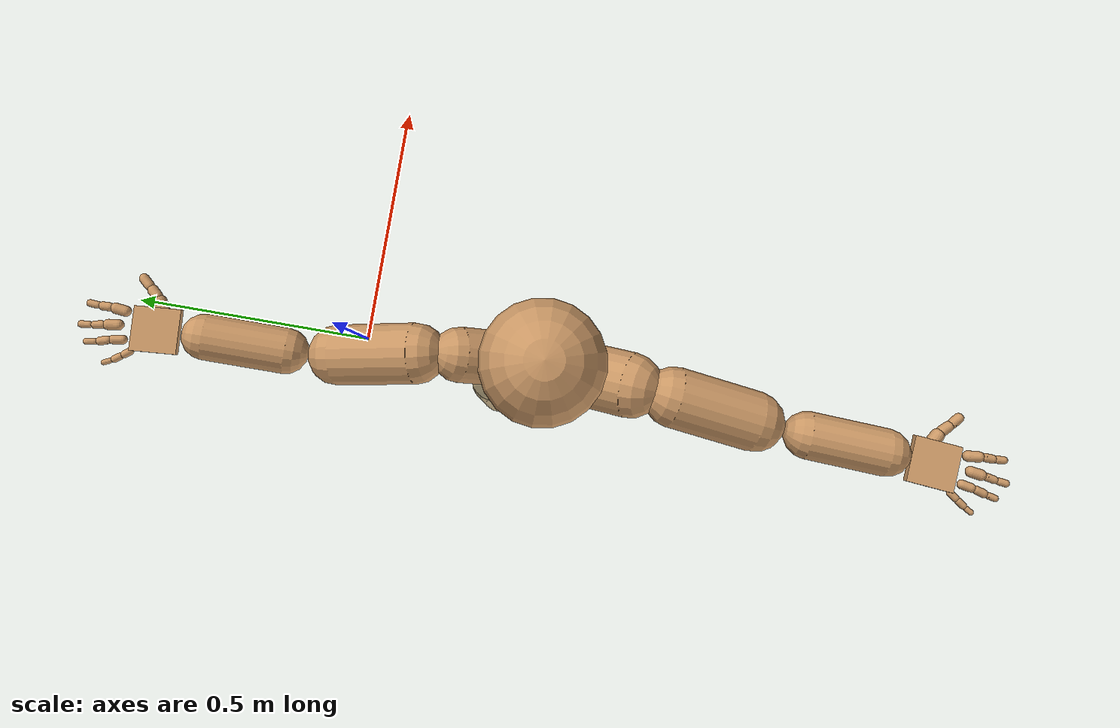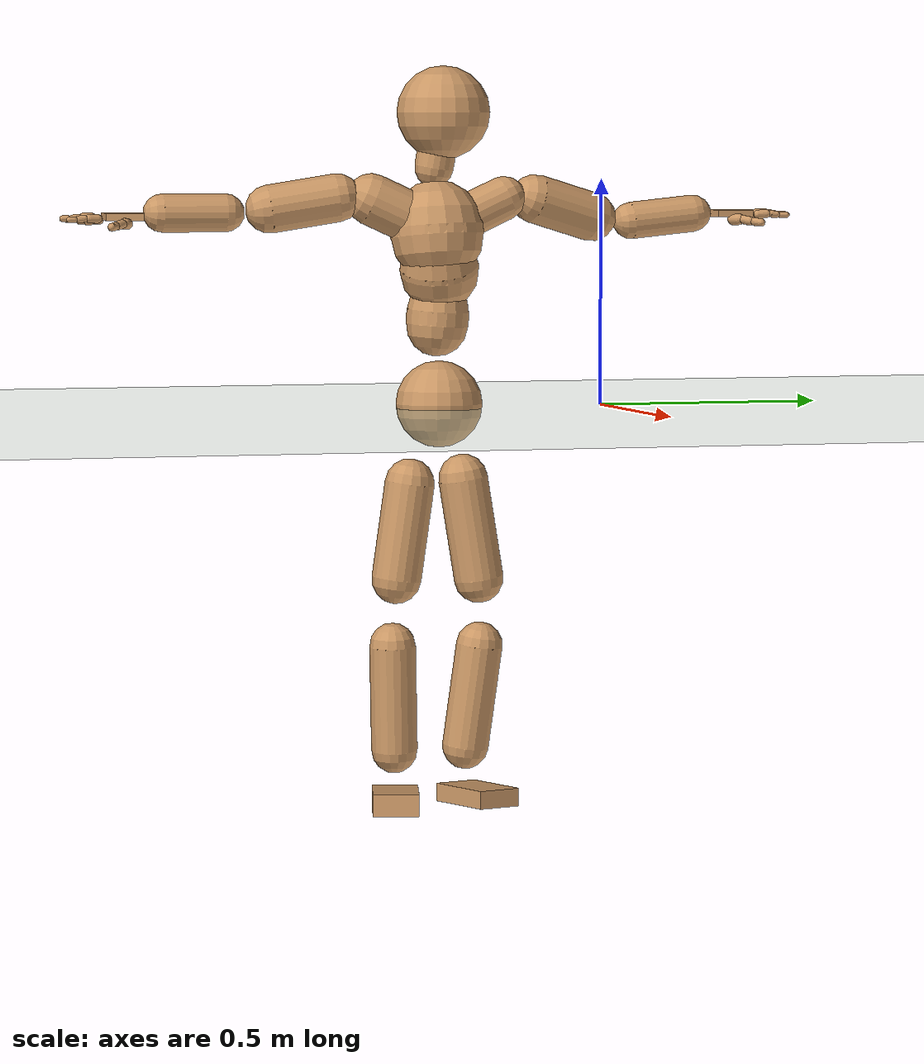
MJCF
<mujoco model="humanoid">
  <compiler coordinate="local" angle="radian"/>
  <default>
    <joint damping="0.0" armature="0.01" stiffness="0.0" limited="true"/>
    <geom conaffinity="1" condim="3" contype="7" margin="0.001" rgba="0.8 0.6 .4 1"/>
  </default>
  <asset>
    <texture type="skybox" builtin="gradient" rgb1=".4 .5 .6" rgb2="0 0 0" width="100" height="100"/>
    <texture builtin="flat" height="1278" mark="cross" markrgb="1 1 1" name="texgeom" random="0.01" rgb1="0.8 0.6 0.4" rgb2="0.8 0.6 0.4" type="cube" width="127"/>
    <texture builtin="checker" height="100" name="texplane" rgb1="0 0 0" rgb2="0.8 0.8 0.8" type="2d" width="100"/>
    <material name="MatPlane" reflectance="0.5" shininess="1" specular="1" texrepeat="60 60" texture="texplane"/>
    <material name="geom" texture="texgeom" texuniform="true"/>
  </asset>
  <worldbody>
    <light cutoff="100" diffuse="1 1 1" dir="-0 0 -1.3" directional="true" exponent="1" pos="0 0 1.3" specular=".1 .1 .1"/>
    <geom conaffinity="1" condim="3" name="floor" pos="0 0 0" rgba="0.8 0.9 0.8 1" size="100 100 .2" type="plane" material="MatPlane"/>
    <body name="Pelvis" pos="0.0009 -0.3744 0.007">
      <freejoint name="Pelvis"/>
      <geom type="sphere" contype="1" conaffinity="1" density="500" size="0.0956" pos="0.0000 0.0000 0.0000" name="Pelvis"/>
      <body name="L_Hip" pos="-0.025 0.0502 -0.0942">
        <joint name="L_Hip_x" type="hinge" pos="0 0 0" axis="1 0 0" stiffness="800" damping="80" armature="0.02" range="-180.0000 180.0000"/>
        <joint name="L_Hip_y" type="hinge" pos="0 0 0" axis="0 1 0" stiffness="800" damping="80" armature="0.02" range="-180.0000 180.0000"/>
        <joint name="L_Hip_z" type="hinge" pos="0 0 0" axis="0 0 1" stiffness="800" damping="80" armature="0.02" range="-180.0000 180.0000"/>
        <geom type="capsule" contype="1" conaffinity="1" density="500" fromto="-0.0014 0.0124 -0.0741 -0.0057 0.0498 -0.2965" size="0.0549" name="L_Hip"/>
        <body name="L_Knee" pos="-0.0071 0.0622 -0.3706">
          <joint name="L_Knee_x" type="hinge" pos="0 0 0" axis="1 0 0" stiffness="800" damping="80" armature="0.02" range="-180.0000 180.0000"/>
          <joint name="L_Knee_y" type="hinge" pos="0 0 0" axis="0 1 0" stiffness="800" damping="80" armature="0.02" range="-180.0000 180.0000"/>
          <joint name="L_Knee_z" type="hinge" pos="0 0 0" axis="0 0 1" stiffness="800" damping="80" armature="0.02" range="-180.0000 180.0000"/>
          <geom type="capsule" contype="1" conaffinity="1" density="500" fromto="-0.0076 -0.0085 -0.0757 -0.0303 -0.0342 -0.3030" size="0.0515" name="L_Knee"/>
          <body name="L_Ankle" pos="-0.0379 -0.0427 -0.3787">
            <joint name="L_Ankle_x" type="hinge" pos="0 0 0" axis="1 0 0" stiffness="800" damping="80" armature="0.02" range="-180.0000 180.0000"/>
            <joint name="L_Ankle_y" type="hinge" pos="0 0 0" axis="0 1 0" stiffness="800" damping="80" armature="0.02" range="-180.0000 180.0000"/>
            <joint name="L_Ankle_z" type="hinge" pos="0 0 0" axis="0 0 1" stiffness="800" damping="80" armature="0.02" range="-180.0000 180.0000"/>
            <geom type="box" contype="1" conaffinity="1" density="500" pos="0.0632 0.0211 -0.0274" size="0.0863 0.0509 0.0199" quat="0.9871 0.0000 0.0000 0.1601" name="L_Ankle"/>
            <body name="L_Toe" pos="0.1264 0.0421 -0.0548">
              <joint name="L_Toe_x" type="hinge" pos="0 0 0" axis="1 0 0" stiffness="500" damping="50" armature="0.02" range="-180.0000 180.0000"/>
              <joint name="L_Toe_y" type="hinge" pos="0 0 0" axis="0 1 0" stiffness="500" damping="50" armature="0.02" range="-180.0000 180.0000"/>
              <joint name="L_Toe_z" type="hinge" pos="0 0 0" axis="0 0 1" stiffness="500" damping="50" armature="0.02" range="-180.0000 180.0000"/>
              <geom type="box" contype="1" conaffinity="1" density="500" pos="0.0000 0.0000 0.0283" size="0.001 0.0024 0.001" quat="0.9864 0.0000 0.0000 0.1647" name="L_Toe"/>
            </body>
          </body>
        </body>
      </body>
      <body name="R_Hip" pos="-0.0187 -0.0518 -0.1048">
        <joint name="R_Hip_x" type="hinge" pos="0 0 0" axis="1 0 0" stiffness="800" damping="80" armature="0.02" range="-180.0000 180.0000"/>
        <joint name="R_Hip_y" type="hinge" pos="0 0 0" axis="0 1 0" stiffness="800" damping="80" armature="0.02" range="-180.0000 180.0000"/>
        <joint name="R_Hip_z" type="hinge" pos="0 0 0" axis="0 0 1" stiffness="800" damping="80" armature="0.02" range="-180.0000 180.0000"/>
        <geom type="capsule" contype="1" conaffinity="1" density="500" fromto="-0.0028 -0.0095 -0.0708 -0.0114 -0.0378 -0.2834" size="0.0547" name="R_Hip"/>
        <body name="R_Knee" pos="-0.0142 -0.0473 -0.3542">
          <joint name="R_Knee_x" type="hinge" pos="0 0 0" axis="1 0 0" stiffness="800" damping="80" armature="0.02" range="-180.0000 180.0000"/>
          <joint name="R_Knee_y" type="hinge" pos="0 0 0" axis="0 1 0" stiffness="800" damping="80" armature="0.02" range="-180.0000 180.0000"/>
          <joint name="R_Knee_z" type="hinge" pos="0 0 0" axis="0 0 1" stiffness="800" damping="80" armature="0.02" range="-180.0000 180.0000"/>
          <geom type="capsule" contype="1" conaffinity="1" density="500" fromto="-0.0074 0.0033 -0.0782 -0.0295 0.0134 -0.3129" size="0.0511" name="R_Knee"/>
          <body name="R_Ankle" pos="-0.0369 0.0167 -0.3912">
            <joint name="R_Ankle_x" type="hinge" pos="0 0 0" axis="1 0 0" stiffness="800" damping="80" armature="0.02" range="-180.0000 180.0000"/>
            <joint name="R_Ankle_y" type="hinge" pos="0 0 0" axis="0 1 0" stiffness="800" damping="80" armature="0.02" range="-180.0000 180.0000"/>
            <joint name="R_Ankle_z" type="hinge" pos="0 0 0" axis="0 0 1" stiffness="800" damping="80" armature="0.02" range="-180.0000 180.0000"/>
            <geom type="box" contype="1" conaffinity="1" density="500" pos="0.0663 -0.0169 -0.0271" size="0.0863 0.0509 0.0241" quat="0.9923 0.0000 0.0000 -0.1242" name="R_Ankle"/>
            <body name="R_Toe" pos="0.1326 -0.0337 -0.0542">
              <joint name="R_Toe_x" type="hinge" pos="0 0 0" axis="1 0 0" stiffness="500" damping="50" armature="0.02" range="-180.0000 180.0000"/>
              <joint name="R_Toe_y" type="hinge" pos="0 0 0" axis="0 1 0" stiffness="500" damping="50" armature="0.02" range="-180.0000 180.0000"/>
              <joint name="R_Toe_z" type="hinge" pos="0 0 0" axis="0 0 1" stiffness="500" damping="50" armature="0.02" range="-180.0000 180.0000"/>
              <geom type="box" contype="1" conaffinity="1" density="500" pos="0.0000 0.0000 0.0239" size="0.001 0.0024 0.001" quat="0.9933 0.0000 0.0000 -0.1155" name="R_Toe"/>
            </body>
          </body>
        </body>
      </body>
      <body name="Torso" pos="-0.0312 -0.0008 0.1091">
        <joint name="Torso_x" type="hinge" pos="0 0 0" axis="1 0 0" stiffness="1000" damping="100" armature="0.02" range="-180.0000 180.0000"/>
        <joint name="Torso_y" type="hinge" pos="0 0 0" axis="0 1 0" stiffness="1000" damping="100" armature="0.02" range="-180.0000 180.0000"/>
        <joint name="Torso_z" type="hinge" pos="0 0 0" axis="0 0 1" stiffness="1000" damping="100" armature="0.02" range="-180.0000 180.0000"/>
        <geom type="capsule" contype="1" conaffinity="1" density="500" fromto="0.0043 0.0060 0.0954 0.0029 0.0040 0.0636" size="0.0689" name="Torso"/>
        <body name="Spine" pos="0.0071 0.01 0.159">
          <joint name="Spine_x" type="hinge" pos="0 0 0" axis="1 0 0" stiffness="1000" damping="100" armature="0.02" range="-180.0000 180.0000"/>
          <joint name="Spine_y" type="hinge" pos="0 0 0" axis="0 1 0" stiffness="1000" damping="100" armature="0.02" range="-180.0000 180.0000"/>
          <joint name="Spine_z" type="hinge" pos="0 0 0" axis="0 0 1" stiffness="1000" damping="100" armature="0.02" range="-180.0000 180.0000"/>
          <geom type="capsule" contype="1" conaffinity="1" density="500" fromto="0.0125 -0.0056 0.0356 0.0083 -0.0037 0.0237" size="0.0871" name="Spine"/>
          <body name="Chest" pos="0.0208 -0.0093 0.0593">
            <joint name="Chest_x" type="hinge" pos="0 0 0" axis="1 0 0" stiffness="1000" damping="100" armature="0.02" range="-180.0000 180.0000"/>
            <joint name="Chest_y" type="hinge" pos="0 0 0" axis="0 1 0" stiffness="1000" damping="100" armature="0.02" range="-180.0000 180.0000"/>
            <joint name="Chest_z" type="hinge" pos="0 0 0" axis="0 0 1" stiffness="1000" damping="100" armature="0.02" range="-180.0000 180.0000"/>
            <geom type="capsule" contype="1" conaffinity="1" density="500" fromto="-0.0064 -0.0024 0.0626 -0.0043 -0.0016 0.0417" size="0.1034" name="Chest"/>
            <body name="Neck" pos="-0.0237 -0.0093 0.1624">
              <joint name="Neck_x" type="hinge" pos="0 0 0" axis="1 0 0" stiffness="500" damping="50" armature="0.02" range="-180.0000 180.0000"/>
              <joint name="Neck_y" type="hinge" pos="0 0 0" axis="0 1 0" stiffness="500" damping="50" armature="0.02" range="-180.0000 180.0000"/>
              <joint name="Neck_z" type="hinge" pos="0 0 0" axis="0 0 1" stiffness="500" damping="50" armature="0.02" range="-180.0000 180.0000"/>
              <geom type="capsule" contype="1" conaffinity="1" density="500" fromto="0.0028 0.0046 0.0303 0.0113 0.0184 0.1212" size="0.0429" name="Neck"/>
              <body name="Head" pos="0.0142 0.023 0.1515">
                <joint name="Head_x" type="hinge" pos="0 0 0" axis="1 0 0" stiffness="500" damping="50" armature="0.02" range="-180.0000 180.0000"/>
                <joint name="Head_y" type="hinge" pos="0 0 0" axis="0 1 0" stiffness="500" damping="50" armature="0.02" range="-180.0000 180.0000"/>
                <joint name="Head_z" type="hinge" pos="0 0 0" axis="0 0 1" stiffness="500" damping="50" armature="0.02" range="-180.0000 180.0000"/>
                <geom type="sphere" contype="1" conaffinity="1" density="500" size="0.1029" pos="0.0000 0.0000 0.0000" name="Head"/>
              </body>
            </body>
            <body name="L_Thorax" pos="-0.0026 0.0426 0.0749">
              <joint name="L_Thorax_x" type="hinge" pos="0 0 0" axis="1 0 0" stiffness="500" damping="50" armature="0.02" range="-180.0000 180.0000"/>
              <joint name="L_Thorax_y" type="hinge" pos="0 0 0" axis="0 1 0" stiffness="500" damping="50" armature="0.02" range="-180.0000 180.0000"/>
              <joint name="L_Thorax_z" type="hinge" pos="0 0 0" axis="0 0 1" stiffness="500" damping="50" armature="0.02" range="-180.0000 180.0000"/>
              <geom type="capsule" contype="1" conaffinity="1" density="500" fromto="-0.0026 0.0279 0.0124 -0.0103 0.1115 0.0495" size="0.0486" name="L_Thorax"/>
              <body name="L_Shoulder" pos="-0.0128 0.1394 0.0618">
                <joint name="L_Shoulder_x" type="hinge" pos="0 0 0" axis="1 0 0" stiffness="500" damping="50" armature="0.02" range="-180.0000 180.0000"/>
                <joint name="L_Shoulder_y" type="hinge" pos="0 0 0" axis="0 1 0" stiffness="500" damping="50" armature="0.02" range="-180.0000 180.0000"/>
                <joint name="L_Shoulder_z" type="hinge" pos="0 0 0" axis="0 0 1" stiffness="500" damping="50" armature="0.02" range="-180.0000 180.0000"/>
                <geom type="capsule" contype="1" conaffinity="1" density="500" fromto="-0.0082 0.0465 -0.0139 -0.0329 0.1858 -0.0556" size="0.054" name="L_Shoulder"/>
                <body name="L_Elbow" pos="-0.0412 0.2323 -0.0695">
                  <joint name="L_Elbow_x" type="hinge" pos="0 0 0" axis="1 0 0" stiffness="500" damping="50" armature="0.02" range="-720.0000 720.0000"/>
                  <joint name="L_Elbow_y" type="hinge" pos="0 0 0" axis="0 1 0" stiffness="500" damping="50" armature="0.02" range="-720.0000 720.0000"/>
                  <joint name="L_Elbow_z" type="hinge" pos="0 0 0" axis="0 0 1" stiffness="500" damping="50" armature="0.02" range="-720.0000 720.0000"/>
                  <geom type="capsule" contype="1" conaffinity="1" density="500" fromto="-0.0001 0.0482 0.0050 -0.0003 0.1930 0.0200" size="0.041" name="L_Elbow"/>
                  <body name="L_Wrist" pos="-0.0004 0.2412 0.025">
                    <joint name="L_Wrist_x" type="hinge" pos="0 0 0" axis="1 0 0" stiffness="300" damping="30" armature="0.02" range="-180.0000 180.0000"/>
                    <joint name="L_Wrist_y" type="hinge" pos="0 0 0" axis="0 1 0" stiffness="300" damping="30" armature="0.02" range="-180.0000 180.0000"/>
                    <joint name="L_Wrist_z" type="hinge" pos="0 0 0" axis="0 0 1" stiffness="300" damping="30" armature="0.02" range="-180.0000 180.0000"/>
                    <geom type="box" contype="1" conaffinity="1" density="500" pos="-0.0030 0.0395 -0.0055" size="0.042 0.04 0.0079" quat="0.7333 0.0000 0.0000 -0.6799" name="L_Wrist"/>
                    <body name="L_Index1" pos="0.0206 0.0934 -0.0081">
                      <joint name="L_Index1_x" type="hinge" pos="0 0 0" axis="1 0 0" stiffness="100" damping="10" armature="0.02" range="-180.0000 180.0000"/>
                      <joint name="L_Index1_y" type="hinge" pos="0 0 0" axis="0 1 0" stiffness="100" damping="10" armature="0.02" range="-180.0000 180.0000"/>
                      <joint name="L_Index1_z" type="hinge" pos="0 0 0" axis="0 0 1" stiffness="100" damping="10" armature="0.02" range="-180.0000 180.0000"/>
                      <geom type="capsule" contype="1" conaffinity="1" density="500" fromto="0.0007 0.0063 0.0003 0.0027 0.0252 0.0014" size="0.0096" name="L_Index1"/>
                      <body name="L_Index2" pos="0.0034 0.0315 0.0017">
                        <joint name="L_Index2_x" type="hinge" pos="0 0 0" axis="1 0 0" stiffness="100" damping="10" armature="0.02" range="-180.0000 180.0000"/>
                        <joint name="L_Index2_y" type="hinge" pos="0 0 0" axis="0 1 0" stiffness="100" damping="10" armature="0.02" range="-180.0000 180.0000"/>
                        <joint name="L_Index2_z" type="hinge" pos="0 0 0" axis="0 0 1" stiffness="100" damping="10" armature="0.02" range="-180.0000 180.0000"/>
                        <geom type="capsule" contype="1" conaffinity="1" density="500" fromto="-0.0001 0.0044 -0.0005 -0.0004 0.0178 -0.0020" size="0.0077" name="L_Index2"/>
                        <body name="L_Index3" pos="-0.0004 0.0222 -0.0025">
                          <joint name="L_Index3_x" type="hinge" pos="0 0 0" axis="1 0 0" stiffness="100" damping="10" armature="0.02" range="-180.0000 180.0000"/>
                          <joint name="L_Index3_y" type="hinge" pos="0 0 0" axis="0 1 0" stiffness="100" damping="10" armature="0.02" range="-180.0000 180.0000"/>
                          <joint name="L_Index3_z" type="hinge" pos="0 0 0" axis="0 0 1" stiffness="100" damping="10" armature="0.02" range="-180.0000 180.0000"/>
                          <geom type="capsule" contype="1" conaffinity="1" density="500" fromto="0.0003 0.0048 -0.0001 0.0012 0.0194 -0.0004" size="0.0065" name="L_Index3"/>
                        </body>
                      </body>
                    </body>
                    <body name="L_Middle1" pos="-0.0039 0.1009 -0.0054">
                      <joint name="L_Middle1_x" type="hinge" pos="0 0 0" axis="1 0 0" stiffness="100" damping="10" armature="0.02" range="-180.0000 180.0000"/>
                      <joint name="L_Middle1_y" type="hinge" pos="0 0 0" axis="0 1 0" stiffness="100" damping="10" armature="0.02" range="-180.0000 180.0000"/>
                      <joint name="L_Middle1_z" type="hinge" pos="0 0 0" axis="0 0 1" stiffness="100" damping="10" armature="0.02" range="-180.0000 180.0000"/>
                      <geom type="capsule" contype="1" conaffinity="1" density="500" fromto="-0.0009 0.0060 0.0001 -0.0035 0.0241 0.0004" size="0.0097" name="L_Middle1"/>
                      <body name="L_Middle2" pos="-0.0043 0.0301 0.0005">
                        <joint name="L_Middle2_x" type="hinge" pos="0 0 0" axis="1 0 0" stiffness="100" damping="10" armature="0.02" range="-180.0000 180.0000"/>
                        <joint name="L_Middle2_y" type="hinge" pos="0 0 0" axis="0 1 0" stiffness="100" damping="10" armature="0.02" range="-180.0000 180.0000"/>
                        <joint name="L_Middle2_z" type="hinge" pos="0 0 0" axis="0 0 1" stiffness="100" damping="10" armature="0.02" range="-180.0000 180.0000"/>
                        <geom type="capsule" contype="1" conaffinity="1" density="500" fromto="-0.0009 0.0046 -0.0005 -0.0035 0.0184 -0.0019" size="0.0071" name="L_Middle2"/>
                        <body name="L_Middle3" pos="-0.0044 0.023 -0.0024">
                          <joint name="L_Middle3_x" type="hinge" pos="0 0 0" axis="1 0 0" stiffness="100" damping="10" armature="0.02" range="-180.0000 180.0000"/>
                          <joint name="L_Middle3_y" type="hinge" pos="0 0 0" axis="0 1 0" stiffness="100" damping="10" armature="0.02" range="-180.0000 180.0000"/>
                          <joint name="L_Middle3_z" type="hinge" pos="0 0 0" axis="0 0 1" stiffness="100" damping="10" armature="0.02" range="-180.0000 180.0000"/>
                          <geom type="capsule" contype="1" conaffinity="1" density="500" fromto="-0.0005 0.0050 -0.0001 -0.0019 0.0200 -0.0003" size="0.0062" name="L_Middle3"/>
                        </body>
                      </body>
                    </body>
                    <body name="L_Pinky1" pos="-0.0454 0.0768 -0.0142">
                      <joint name="L_Pinky1_x" type="hinge" pos="0 0 0" axis="1 0 0" stiffness="100" damping="10" armature="0.02" range="-180.0000 180.0000"/>
                      <joint name="L_Pinky1_y" type="hinge" pos="0 0 0" axis="0 1 0" stiffness="100" damping="10" armature="0.02" range="-180.0000 180.0000"/>
                      <joint name="L_Pinky1_z" type="hinge" pos="0 0 0" axis="0 0 1" stiffness="100" damping="10" armature="0.02" range="-180.0000 180.0000"/>
                      <geom type="capsule" contype="1" conaffinity="1" density="500" fromto="-0.0023 0.0032 -0.0003 -0.0093 0.0129 -0.0012" size="0.0068" name="L_Pinky1"/>
                      <body name="L_Pinky2" pos="-0.0117 0.0162 -0.0015">
                        <joint name="L_Pinky2_x" type="hinge" pos="0 0 0" axis="1 0 0" stiffness="100" damping="10" armature="0.02" range="-180.0000 180.0000"/>
                        <joint name="L_Pinky2_y" type="hinge" pos="0 0 0" axis="0 1 0" stiffness="100" damping="10" armature="0.02" range="-180.0000 180.0000"/>
                        <joint name="L_Pinky2_z" type="hinge" pos="0 0 0" axis="0 0 1" stiffness="100" damping="10" armature="0.02" range="-180.0000 180.0000"/>
                        <geom type="capsule" contype="1" conaffinity="1" density="500" fromto="-0.0022 0.0032 -0.0004 -0.0086 0.0128 -0.0014" size="0.0065" name="L_Pinky2"/>
                        <body name="L_Pinky3" pos="-0.0108 0.016 -0.0018">
                          <joint name="L_Pinky3_x" type="hinge" pos="0 0 0" axis="1 0 0" stiffness="100" damping="10" armature="0.02" range="-180.0000 180.0000"/>
                          <joint name="L_Pinky3_y" type="hinge" pos="0 0 0" axis="0 1 0" stiffness="100" damping="10" armature="0.02" range="-180.0000 180.0000"/>
                          <joint name="L_Pinky3_z" type="hinge" pos="0 0 0" axis="0 0 1" stiffness="100" damping="10" armature="0.02" range="-180.0000 180.0000"/>
                          <geom type="capsule" contype="1" conaffinity="1" density="500" fromto="-0.0018 0.0036 0.0000 -0.0070 0.0144 0.0002" size="0.0048" name="L_Pinky3"/>
                        </body>
                      </body>
                    </body>
                    <body name="L_Ring1" pos="-0.0283 0.0894 -0.0085">
                      <joint name="L_Ring1_x" type="hinge" pos="0 0 0" axis="1 0 0" stiffness="100" damping="10" armature="0.02" range="-180.0000 180.0000"/>
                      <joint name="L_Ring1_y" type="hinge" pos="0 0 0" axis="0 1 0" stiffness="100" damping="10" armature="0.02" range="-180.0000 180.0000"/>
                      <joint name="L_Ring1_z" type="hinge" pos="0 0 0" axis="0 0 1" stiffness="100" damping="10" armature="0.02" range="-180.0000 180.0000"/>
                      <geom type="capsule" contype="1" conaffinity="1" density="500" fromto="-0.0010 0.0056 0.0001 -0.0039 0.0222 0.0004" size="0.0082" name="L_Ring1"/>
                      <body name="L_Ring2" pos="-0.0049 0.0278 0.0005">
                        <joint name="L_Ring2_x" type="hinge" pos="0 0 0" axis="1 0 0" stiffness="100" damping="10" armature="0.02" range="-180.0000 180.0000"/>
                        <joint name="L_Ring2_y" type="hinge" pos="0 0 0" axis="0 1 0" stiffness="100" damping="10" armature="0.02" range="-180.0000 180.0000"/>
                        <joint name="L_Ring2_z" type="hinge" pos="0 0 0" axis="0 0 1" stiffness="100" damping="10" armature="0.02" range="-180.0000 180.0000"/>
                        <geom type="capsule" contype="1" conaffinity="1" density="500" fromto="-0.0013 0.0045 -0.0005 -0.0052 0.0181 -0.0019" size="0.0076" name="L_Ring2"/>
                        <body name="L_Ring3" pos="-0.0065 0.0227 -0.0023">
                          <joint name="L_Ring3_x" type="hinge" pos="0 0 0" axis="1 0 0" stiffness="100" damping="10" armature="0.02" range="-180.0000 180.0000"/>
                          <joint name="L_Ring3_y" type="hinge" pos="0 0 0" axis="0 1 0" stiffness="100" damping="10" armature="0.02" range="-180.0000 180.0000"/>
                          <joint name="L_Ring3_z" type="hinge" pos="0 0 0" axis="0 0 1" stiffness="100" damping="10" armature="0.02" range="-180.0000 180.0000"/>
                          <geom type="capsule" contype="1" conaffinity="1" density="500" fromto="-0.0009 0.0049 -0.0001 -0.0036 0.0197 -0.0003" size="0.0058" name="L_Ring3"/>
                        </body>
                      </body>
                    </body>
                    <body name="L_Thumb1" pos="0.0272 0.0343 -0.0194">
                      <joint name="L_Thumb1_x" type="hinge" pos="0 0 0" axis="1 0 0" stiffness="100" damping="10" armature="0.02" range="-180.0000 180.0000"/>
                      <joint name="L_Thumb1_y" type="hinge" pos="0 0 0" axis="0 1 0" stiffness="100" damping="10" armature="0.02" range="-180.0000 180.0000"/>
                      <joint name="L_Thumb1_z" type="hinge" pos="0 0 0" axis="0 0 1" stiffness="100" damping="10" armature="0.02" range="-180.0000 180.0000"/>
                      <geom type="capsule" contype="1" conaffinity="1" density="500" fromto="0.0053 0.0030 0.0004 0.0213 0.0121 0.0014" size="0.0123" name="L_Thumb1"/>
                      <body name="L_Thumb2" pos="0.0266 0.0152 0.0018">
                        <joint name="L_Thumb2_x" type="hinge" pos="0 0 0" axis="1 0 0" stiffness="100" damping="10" armature="0.02" range="-180.0000 180.0000"/>
                        <joint name="L_Thumb2_y" type="hinge" pos="0 0 0" axis="0 1 0" stiffness="100" damping="10" armature="0.02" range="-180.0000 180.0000"/>
                        <joint name="L_Thumb2_z" type="hinge" pos="0 0 0" axis="0 0 1" stiffness="100" damping="10" armature="0.02" range="-180.0000 180.0000"/>
                        <geom type="capsule" contype="1" conaffinity="1" density="500" fromto="0.0033 0.0038 -0.0009 0.0132 0.0153 -0.0038" size="0.0098" name="L_Thumb2"/>
                        <body name="L_Thumb3" pos="0.0165 0.0191 -0.0047">
                          <joint name="L_Thumb3_x" type="hinge" pos="0 0 0" axis="1 0 0" stiffness="100" damping="10" armature="0.02" range="-180.0000 180.0000"/>
                          <joint name="L_Thumb3_y" type="hinge" pos="0 0 0" axis="0 1 0" stiffness="100" damping="10" armature="0.02" range="-180.0000 180.0000"/>
                          <joint name="L_Thumb3_z" type="hinge" pos="0 0 0" axis="0 0 1" stiffness="100" damping="10" armature="0.02" range="-180.0000 180.0000"/>
                          <geom type="capsule" contype="1" conaffinity="1" density="500" fromto="0.0037 0.0042 -0.0005 0.0148 0.0169 -0.0022" size="0.0089" name="L_Thumb3"/>
                        </body>
                      </body>
                    </body>
                  </body>
                </body>
              </body>
            </body>
            <body name="R_Thorax" pos="-0.0059 -0.0456 0.0756">
              <joint name="R_Thorax_x" type="hinge" pos="0 0 0" axis="1 0 0" stiffness="500" damping="50" armature="0.02" range="-180.0000 180.0000"/>
              <joint name="R_Thorax_y" type="hinge" pos="0 0 0" axis="0 1 0" stiffness="500" damping="50" armature="0.02" range="-180.0000 180.0000"/>
              <joint name="R_Thorax_z" type="hinge" pos="0 0 0" axis="0 0 1" stiffness="500" damping="50" armature="0.02" range="-180.0000 180.0000"/>
              <geom type="capsule" contype="1" conaffinity="1" density="500" fromto="-0.0022 -0.0258 0.0120 -0.0088 -0.1032 0.0479" size="0.0573" name="R_Thorax"/>
              <body name="R_Shoulder" pos="-0.011 -0.129 0.0599">
                <joint name="R_Shoulder_x" type="hinge" pos="0 0 0" axis="1 0 0" stiffness="500" damping="50" armature="0.02" range="-180.0000 180.0000"/>
                <joint name="R_Shoulder_y" type="hinge" pos="0 0 0" axis="0 1 0" stiffness="500" damping="50" armature="0.02" range="-180.0000 180.0000"/>
                <joint name="R_Shoulder_z" type="hinge" pos="0 0 0" axis="0 0 1" stiffness="500" damping="50" armature="0.02" range="-180.0000 180.0000"/>
                <geom type="capsule" contype="1" conaffinity="1" density="500" fromto="-0.0057 -0.0497 -0.0080 -0.0228 -0.1987 -0.0322" size="0.0532" name="R_Shoulder"/>
                <body name="R_Elbow" pos="-0.0285 -0.2484 -0.0402">
                  <joint name="R_Elbow_x" type="hinge" pos="0 0 0" axis="1 0 0" stiffness="500" damping="50" armature="0.02" range="-720.0000 720.0000"/>
                  <joint name="R_Elbow_y" type="hinge" pos="0 0 0" axis="0 1 0" stiffness="500" damping="50" armature="0.02" range="-720.0000 720.0000"/>
                  <joint name="R_Elbow_z" type="hinge" pos="0 0 0" axis="0 0 1" stiffness="500" damping="50" armature="0.02" range="-720.0000 720.0000"/>
                  <geom type="capsule" contype="1" conaffinity="1" density="500" fromto="-0.0021 -0.0469 0.0001 -0.0086 -0.1875 0.0004" size="0.0419" name="R_Elbow"/>
                  <body name="R_Wrist" pos="-0.0107 -0.2344 0.0005">
                    <joint name="R_Wrist_x" type="hinge" pos="0 0 0" axis="1 0 0" stiffness="300" damping="30" armature="0.02" range="-180.0000 180.0000"/>
                    <joint name="R_Wrist_y" type="hinge" pos="0 0 0" axis="0 1 0" stiffness="300" damping="30" armature="0.02" range="-180.0000 180.0000"/>
                    <joint name="R_Wrist_z" type="hinge" pos="0 0 0" axis="0 0 1" stiffness="300" damping="30" armature="0.02" range="-180.0000 180.0000"/>
                    <geom type="box" contype="1" conaffinity="1" density="500" pos="-0.0035 -0.0393 -0.0073" size="0.042 0.0408 0.008" quat="0.7375 0.0000 0.0000 0.6754" name="R_Wrist"/>
                    <body name="R_Index1" pos="0.0196 -0.093 -0.0116">
                      <joint name="R_Index1_x" type="hinge" pos="0 0 0" axis="1 0 0" stiffness="100" damping="10" armature="0.02" range="-180.0000 180.0000"/>
                      <joint name="R_Index1_y" type="hinge" pos="0 0 0" axis="0 1 0" stiffness="100" damping="10" armature="0.02" range="-180.0000 180.0000"/>
                      <joint name="R_Index1_z" type="hinge" pos="0 0 0" axis="0 0 1" stiffness="100" damping="10" armature="0.02" range="-180.0000 180.0000"/>
                      <geom type="capsule" contype="1" conaffinity="1" density="500" fromto="0.0007 -0.0063 0.0003 0.0027 -0.0252 0.0014" size="0.0096" name="R_Index1"/>
                      <body name="R_Index2" pos="0.0034 -0.0315 0.0017">
                        <joint name="R_Index2_x" type="hinge" pos="0 0 0" axis="1 0 0" stiffness="100" damping="10" armature="0.02" range="-180.0000 180.0000"/>
                        <joint name="R_Index2_y" type="hinge" pos="0 0 0" axis="0 1 0" stiffness="100" damping="10" armature="0.02" range="-180.0000 180.0000"/>
                        <joint name="R_Index2_z" type="hinge" pos="0 0 0" axis="0 0 1" stiffness="100" damping="10" armature="0.02" range="-180.0000 180.0000"/>
                        <geom type="capsule" contype="1" conaffinity="1" density="500" fromto="-0.0001 -0.0044 -0.0005 -0.0004 -0.0178 -0.0020" size="0.0077" name="R_Index2"/>
                        <body name="R_Index3" pos="-0.0004 -0.0222 -0.0025">
                          <joint name="R_Index3_x" type="hinge" pos="0 0 0" axis="1 0 0" stiffness="100" damping="10" armature="0.02" range="-180.0000 180.0000"/>
                          <joint name="R_Index3_y" type="hinge" pos="0 0 0" axis="0 1 0" stiffness="100" damping="10" armature="0.02" range="-180.0000 180.0000"/>
                          <joint name="R_Index3_z" type="hinge" pos="0 0 0" axis="0 0 1" stiffness="100" damping="10" armature="0.02" range="-180.0000 180.0000"/>
                          <geom type="capsule" contype="1" conaffinity="1" density="500" fromto="0.0003 -0.0040 -0.0001 0.0012 -0.0162 -0.0004" size="0.0068" name="R_Index3"/>
                        </body>
                      </body>
                    </body>
                    <body name="R_Middle1" pos="-0.0049 -0.1006 -0.0089">
                      <joint name="R_Middle1_x" type="hinge" pos="0 0 0" axis="1 0 0" stiffness="100" damping="10" armature="0.02" range="-180.0000 180.0000"/>
                      <joint name="R_Middle1_y" type="hinge" pos="0 0 0" axis="0 1 0" stiffness="100" damping="10" armature="0.02" range="-180.0000 180.0000"/>
                      <joint name="R_Middle1_z" type="hinge" pos="0 0 0" axis="0 0 1" stiffness="100" damping="10" armature="0.02" range="-180.0000 180.0000"/>
                      <geom type="capsule" contype="1" conaffinity="1" density="500" fromto="-0.0009 -0.0060 0.0001 -0.0035 -0.0241 0.0004" size="0.0097" name="R_Middle1"/>
                      <body name="R_Middle2" pos="-0.0043 -0.0301 0.0005">
                        <joint name="R_Middle2_x" type="hinge" pos="0 0 0" axis="1 0 0" stiffness="100" damping="10" armature="0.02" range="-180.0000 180.0000"/>
                        <joint name="R_Middle2_y" type="hinge" pos="0 0 0" axis="0 1 0" stiffness="100" damping="10" armature="0.02" range="-180.0000 180.0000"/>
                        <joint name="R_Middle2_z" type="hinge" pos="0 0 0" axis="0 0 1" stiffness="100" damping="10" armature="0.02" range="-180.0000 180.0000"/>
                        <geom type="capsule" contype="1" conaffinity="1" density="500" fromto="-0.0009 -0.0046 -0.0005 -0.0035 -0.0184 -0.0019" size="0.0071" name="R_Middle2"/>
                        <body name="R_Middle3" pos="-0.0044 -0.023 -0.0024">
                          <joint name="R_Middle3_x" type="hinge" pos="0 0 0" axis="1 0 0" stiffness="100" damping="10" armature="0.02" range="-180.0000 180.0000"/>
                          <joint name="R_Middle3_y" type="hinge" pos="0 0 0" axis="0 1 0" stiffness="100" damping="10" armature="0.02" range="-180.0000 180.0000"/>
                          <joint name="R_Middle3_z" type="hinge" pos="0 0 0" axis="0 0 1" stiffness="100" damping="10" armature="0.02" range="-180.0000 180.0000"/>
                          <geom type="capsule" contype="1" conaffinity="1" density="500" fromto="-0.0005 -0.0042 -0.0001 -0.0019 -0.0168 -0.0003" size="0.0065" name="R_Middle3"/>
                        </body>
                      </body>
                    </body>
                    <body name="R_Pinky1" pos="-0.0463 -0.0764 -0.0177">
                      <joint name="R_Pinky1_x" type="hinge" pos="0 0 0" axis="1 0 0" stiffness="100" damping="10" armature="0.02" range="-180.0000 180.0000"/>
                      <joint name="R_Pinky1_y" type="hinge" pos="0 0 0" axis="0 1 0" stiffness="100" damping="10" armature="0.02" range="-180.0000 180.0000"/>
                      <joint name="R_Pinky1_z" type="hinge" pos="0 0 0" axis="0 0 1" stiffness="100" damping="10" armature="0.02" range="-180.0000 180.0000"/>
                      <geom type="capsule" contype="1" conaffinity="1" density="500" fromto="-0.0023 -0.0032 -0.0003 -0.0093 -0.0129 -0.0012" size="0.0068" name="R_Pinky1"/>
                      <body name="R_Pinky2" pos="-0.0117 -0.0162 -0.0015">
                        <joint name="R_Pinky2_x" type="hinge" pos="0 0 0" axis="1 0 0" stiffness="100" damping="10" armature="0.02" range="-180.0000 180.0000"/>
                        <joint name="R_Pinky2_y" type="hinge" pos="0 0 0" axis="0 1 0" stiffness="100" damping="10" armature="0.02" range="-180.0000 180.0000"/>
                        <joint name="R_Pinky2_z" type="hinge" pos="0 0 0" axis="0 0 1" stiffness="100" damping="10" armature="0.02" range="-180.0000 180.0000"/>
                        <geom type="capsule" contype="1" conaffinity="1" density="500" fromto="-0.0022 -0.0032 -0.0004 -0.0086 -0.0128 -0.0014" size="0.0065" name="R_Pinky2"/>
                        <body name="R_Pinky3" pos="-0.0108 -0.016 -0.0018">
                          <joint name="R_Pinky3_x" type="hinge" pos="0 0 0" axis="1 0 0" stiffness="100" damping="10" armature="0.02" range="-180.0000 180.0000"/>
                          <joint name="R_Pinky3_y" type="hinge" pos="0 0 0" axis="0 1 0" stiffness="100" damping="10" armature="0.02" range="-180.0000 180.0000"/>
                          <joint name="R_Pinky3_z" type="hinge" pos="0 0 0" axis="0 0 1" stiffness="100" damping="10" armature="0.02" range="-180.0000 180.0000"/>
                          <geom type="capsule" contype="1" conaffinity="1" density="500" fromto="-0.0018 -0.0028 0.0000 -0.0070 -0.0112 0.0002" size="0.0051" name="R_Pinky3"/>
                        </body>
                      </body>
                    </body>
                    <body name="R_Ring1" pos="-0.0293 -0.0891 -0.012">
                      <joint name="R_Ring1_x" type="hinge" pos="0 0 0" axis="1 0 0" stiffness="100" damping="10" armature="0.02" range="-180.0000 180.0000"/>
                      <joint name="R_Ring1_y" type="hinge" pos="0 0 0" axis="0 1 0" stiffness="100" damping="10" armature="0.02" range="-180.0000 180.0000"/>
                      <joint name="R_Ring1_z" type="hinge" pos="0 0 0" axis="0 0 1" stiffness="100" damping="10" armature="0.02" range="-180.0000 180.0000"/>
                      <geom type="capsule" contype="1" conaffinity="1" density="500" fromto="-0.0010 -0.0056 0.0001 -0.0039 -0.0222 0.0004" size="0.0082" name="R_Ring1"/>
                      <body name="R_Ring2" pos="-0.0049 -0.0278 0.0005">
                        <joint name="R_Ring2_x" type="hinge" pos="0 0 0" axis="1 0 0" stiffness="100" damping="10" armature="0.02" range="-180.0000 180.0000"/>
                        <joint name="R_Ring2_y" type="hinge" pos="0 0 0" axis="0 1 0" stiffness="100" damping="10" armature="0.02" range="-180.0000 180.0000"/>
                        <joint name="R_Ring2_z" type="hinge" pos="0 0 0" axis="0 0 1" stiffness="100" damping="10" armature="0.02" range="-180.0000 180.0000"/>
                        <geom type="capsule" contype="1" conaffinity="1" density="500" fromto="-0.0013 -0.0045 -0.0005 -0.0052 -0.0181 -0.0019" size="0.0076" name="R_Ring2"/>
                        <body name="R_Ring3" pos="-0.0065 -0.0227 -0.0023">
                          <joint name="R_Ring3_x" type="hinge" pos="0 0 0" axis="1 0 0" stiffness="100" damping="10" armature="0.02" range="-180.0000 180.0000"/>
                          <joint name="R_Ring3_y" type="hinge" pos="0 0 0" axis="0 1 0" stiffness="100" damping="10" armature="0.02" range="-180.0000 180.0000"/>
                          <joint name="R_Ring3_z" type="hinge" pos="0 0 0" axis="0 0 1" stiffness="100" damping="10" armature="0.02" range="-180.0000 180.0000"/>
                          <geom type="capsule" contype="1" conaffinity="1" density="500" fromto="-0.0009 -0.0041 -0.0001 -0.0036 -0.0165 -0.0003" size="0.0061" name="R_Ring3"/>
                        </body>
                      </body>
                    </body>
                    <body name="R_Thumb1" pos="0.0262 -0.0339 -0.0229">
                      <joint name="R_Thumb1_x" type="hinge" pos="0 0 0" axis="1 0 0" stiffness="100" damping="10" armature="0.02" range="-180.0000 180.0000"/>
                      <joint name="R_Thumb1_y" type="hinge" pos="0 0 0" axis="0 1 0" stiffness="100" damping="10" armature="0.02" range="-180.0000 180.0000"/>
                      <joint name="R_Thumb1_z" type="hinge" pos="0 0 0" axis="0 0 1" stiffness="100" damping="10" armature="0.02" range="-180.0000 180.0000"/>
                      <geom type="capsule" contype="1" conaffinity="1" density="500" fromto="0.0053 -0.0030 0.0004 0.0213 -0.0121 0.0014" size="0.0123" name="R_Thumb1"/>
                      <body name="R_Thumb2" pos="0.0266 -0.0152 0.0018">
                        <joint name="R_Thumb2_x" type="hinge" pos="0 0 0" axis="1 0 0" stiffness="100" damping="10" armature="0.02" range="-180.0000 180.0000"/>
                        <joint name="R_Thumb2_y" type="hinge" pos="0 0 0" axis="0 1 0" stiffness="100" damping="10" armature="0.02" range="-180.0000 180.0000"/>
                        <joint name="R_Thumb2_z" type="hinge" pos="0 0 0" axis="0 0 1" stiffness="100" damping="10" armature="0.02" range="-180.0000 180.0000"/>
                        <geom type="capsule" contype="1" conaffinity="1" density="500" fromto="0.0033 -0.0038 -0.0009 0.0132 -0.0153 -0.0038" size="0.0098" name="R_Thumb2"/>
                        <body name="R_Thumb3" pos="0.0165 -0.0191 -0.0047">
                          <joint name="R_Thumb3_x" type="hinge" pos="0 0 0" axis="1 0 0" stiffness="100" damping="10" armature="0.02" range="-180.0000 180.0000"/>
                          <joint name="R_Thumb3_y" type="hinge" pos="0 0 0" axis="0 1 0" stiffness="100" damping="10" armature="0.02" range="-180.0000 180.0000"/>
                          <joint name="R_Thumb3_z" type="hinge" pos="0 0 0" axis="0 0 1" stiffness="100" damping="10" armature="0.02" range="-180.0000 180.0000"/>
                          <geom type="capsule" contype="1" conaffinity="1" density="500" fromto="0.0037 -0.0034 -0.0005 0.0148 -0.0137 -0.0022" size="0.0091" name="R_Thumb3"/>
                        </body>
                      </body>
                    </body>
                  </body>
                </body>
              </body>
            </body>
          </body>
        </body>
      </body>
    </body>
  </worldbody>
  <actuator>
    <motor name="L_Hip_x" joint="L_Hip_x" gear="500"/>
    <motor name="L_Hip_y" joint="L_Hip_y" gear="500"/>
    <motor name="L_Hip_z" joint="L_Hip_z" gear="500"/>
    <motor name="L_Knee_x" joint="L_Knee_x" gear="500"/>
    <motor name="L_Knee_y" joint="L_Knee_y" gear="500"/>
    <motor name="L_Knee_z" joint="L_Knee_z" gear="500"/>
    <motor name="L_Ankle_x" joint="L_Ankle_x" gear="500"/>
    <motor name="L_Ankle_y" joint="L_Ankle_y" gear="500"/>
    <motor name="L_Ankle_z" joint="L_Ankle_z" gear="500"/>
    <motor name="L_Toe_x" joint="L_Toe_x" gear="500"/>
    <motor name="L_Toe_y" joint="L_Toe_y" gear="500"/>
    <motor name="L_Toe_z" joint="L_Toe_z" gear="500"/>
    <motor name="R_Hip_x" joint="R_Hip_x" gear="500"/>
    <motor name="R_Hip_y" joint="R_Hip_y" gear="500"/>
    <motor name="R_Hip_z" joint="R_Hip_z" gear="500"/>
    <motor name="R_Knee_x" joint="R_Knee_x" gear="500"/>
    <motor name="R_Knee_y" joint="R_Knee_y" gear="500"/>
    <motor name="R_Knee_z" joint="R_Knee_z" gear="500"/>
    <motor name="R_Ankle_x" joint="R_Ankle_x" gear="500"/>
    <motor name="R_Ankle_y" joint="R_Ankle_y" gear="500"/>
    <motor name="R_Ankle_z" joint="R_Ankle_z" gear="500"/>
    <motor name="R_Toe_x" joint="R_Toe_x" gear="500"/>
    <motor name="R_Toe_y" joint="R_Toe_y" gear="500"/>
    <motor name="R_Toe_z" joint="R_Toe_z" gear="500"/>
    <motor name="Torso_x" joint="Torso_x" gear="500"/>
    <motor name="Torso_y" joint="Torso_y" gear="500"/>
    <motor name="Torso_z" joint="Torso_z" gear="500"/>
    <motor name="Spine_x" joint="Spine_x" gear="500"/>
    <motor name="Spine_y" joint="Spine_y" gear="500"/>
    <motor name="Spine_z" joint="Spine_z" gear="500"/>
    <motor name="Chest_x" joint="Chest_x" gear="500"/>
    <motor name="Chest_y" joint="Chest_y" gear="500"/>
    <motor name="Chest_z" joint="Chest_z" gear="500"/>
    <motor name="Neck_x" joint="Neck_x" gear="500"/>
    <motor name="Neck_y" joint="Neck_y" gear="500"/>
    <motor name="Neck_z" joint="Neck_z" gear="500"/>
    <motor name="Head_x" joint="Head_x" gear="500"/>
    <motor name="Head_y" joint="Head_y" gear="500"/>
    <motor name="Head_z" joint="Head_z" gear="500"/>
    <motor name="L_Thorax_x" joint="L_Thorax_x" gear="500"/>
    <motor name="L_Thorax_y" joint="L_Thorax_y" gear="500"/>
    <motor name="L_Thorax_z" joint="L_Thorax_z" gear="500"/>
    <motor name="L_Shoulder_x" joint="L_Shoulder_x" gear="500"/>
    <motor name="L_Shoulder_y" joint="L_Shoulder_y" gear="500"/>
    <motor name="L_Shoulder_z" joint="L_Shoulder_z" gear="500"/>
    <motor name="L_Elbow_x" joint="L_Elbow_x" gear="500"/>
    <motor name="L_Elbow_y" joint="L_Elbow_y" gear="500"/>
    <motor name="L_Elbow_z" joint="L_Elbow_z" gear="500"/>
    <motor name="L_Wrist_x" joint="L_Wrist_x" gear="500"/>
    <motor name="L_Wrist_y" joint="L_Wrist_y" gear="500"/>
    <motor name="L_Wrist_z" joint="L_Wrist_z" gear="500"/>
    <motor name="L_Index1_x" joint="L_Index1_x" gear="500"/>
    <motor name="L_Index1_y" joint="L_Index1_y" gear="500"/>
    <motor name="L_Index1_z" joint="L_Index1_z" gear="500"/>
    <motor name="L_Index2_x" joint="L_Index2_x" gear="500"/>
    <motor name="L_Index2_y" joint="L_Index2_y" gear="500"/>
    <motor name="L_Index2_z" joint="L_Index2_z" gear="500"/>
    <motor name="L_Index3_x" joint="L_Index3_x" gear="500"/>
    <motor name="L_Index3_y" joint="L_Index3_y" gear="500"/>
    <motor name="L_Index3_z" joint="L_Index3_z" gear="500"/>
    <motor name="L_Middle1_x" joint="L_Middle1_x" gear="500"/>
    <motor name="L_Middle1_y" joint="L_Middle1_y" gear="500"/>
    <motor name="L_Middle1_z" joint="L_Middle1_z" gear="500"/>
    <motor name="L_Middle2_x" joint="L_Middle2_x" gear="500"/>
    <motor name="L_Middle2_y" joint="L_Middle2_y" gear="500"/>
    <motor name="L_Middle2_z" joint="L_Middle2_z" gear="500"/>
    <motor name="L_Middle3_x" joint="L_Middle3_x" gear="500"/>
    <motor name="L_Middle3_y" joint="L_Middle3_y" gear="500"/>
    <motor name="L_Middle3_z" joint="L_Middle3_z" gear="500"/>
    <motor name="L_Pinky1_x" joint="L_Pinky1_x" gear="500"/>
    <motor name="L_Pinky1_y" joint="L_Pinky1_y" gear="500"/>
    <motor name="L_Pinky1_z" joint="L_Pinky1_z" gear="500"/>
    <motor name="L_Pinky2_x" joint="L_Pinky2_x" gear="500"/>
    <motor name="L_Pinky2_y" joint="L_Pinky2_y" gear="500"/>
    <motor name="L_Pinky2_z" joint="L_Pinky2_z" gear="500"/>
    <motor name="L_Pinky3_x" joint="L_Pinky3_x" gear="500"/>
    <motor name="L_Pinky3_y" joint="L_Pinky3_y" gear="500"/>
    <motor name="L_Pinky3_z" joint="L_Pinky3_z" gear="500"/>
    <motor name="L_Ring1_x" joint="L_Ring1_x" gear="500"/>
    <motor name="L_Ring1_y" joint="L_Ring1_y" gear="500"/>
    <motor name="L_Ring1_z" joint="L_Ring1_z" gear="500"/>
    <motor name="L_Ring2_x" joint="L_Ring2_x" gear="500"/>
    <motor name="L_Ring2_y" joint="L_Ring2_y" gear="500"/>
    <motor name="L_Ring2_z" joint="L_Ring2_z" gear="500"/>
    <motor name="L_Ring3_x" joint="L_Ring3_x" gear="500"/>
    <motor name="L_Ring3_y" joint="L_Ring3_y" gear="500"/>
    <motor name="L_Ring3_z" joint="L_Ring3_z" gear="500"/>
    <motor name="L_Thumb1_x" joint="L_Thumb1_x" gear="500"/>
    <motor name="L_Thumb1_y" joint="L_Thumb1_y" gear="500"/>
    <motor name="L_Thumb1_z" joint="L_Thumb1_z" gear="500"/>
    <motor name="L_Thumb2_x" joint="L_Thumb2_x" gear="500"/>
    <motor name="L_Thumb2_y" joint="L_Thumb2_y" gear="500"/>
    <motor name="L_Thumb2_z" joint="L_Thumb2_z" gear="500"/>
    <motor name="L_Thumb3_x" joint="L_Thumb3_x" gear="500"/>
    <motor name="L_Thumb3_y" joint="L_Thumb3_y" gear="500"/>
    <motor name="L_Thumb3_z" joint="L_Thumb3_z" gear="500"/>
    <motor name="R_Thorax_x" joint="R_Thorax_x" gear="500"/>
    <motor name="R_Thorax_y" joint="R_Thorax_y" gear="500"/>
    <motor name="R_Thorax_z" joint="R_Thorax_z" gear="500"/>
    <motor name="R_Shoulder_x" joint="R_Shoulder_x" gear="500"/>
    <motor name="R_Shoulder_y" joint="R_Shoulder_y" gear="500"/>
    <motor name="R_Shoulder_z" joint="R_Shoulder_z" gear="500"/>
    <motor name="R_Elbow_x" joint="R_Elbow_x" gear="500"/>
    <motor name="R_Elbow_y" joint="R_Elbow_y" gear="500"/>
    <motor name="R_Elbow_z" joint="R_Elbow_z" gear="500"/>
    <motor name="R_Wrist_x" joint="R_Wrist_x" gear="500"/>
    <motor name="R_Wrist_y" joint="R_Wrist_y" gear="500"/>
    <motor name="R_Wrist_z" joint="R_Wrist_z" gear="500"/>
    <motor name="R_Index1_x" joint="R_Index1_x" gear="500"/>
    <motor name="R_Index1_y" joint="R_Index1_y" gear="500"/>
    <motor name="R_Index1_z" joint="R_Index1_z" gear="500"/>
    <motor name="R_Index2_x" joint="R_Index2_x" gear="500"/>
    <motor name="R_Index2_y" joint="R_Index2_y" gear="500"/>
    <motor name="R_Index2_z" joint="R_Index2_z" gear="500"/>
    <motor name="R_Index3_x" joint="R_Index3_x" gear="500"/>
    <motor name="R_Index3_y" joint="R_Index3_y" gear="500"/>
    <motor name="R_Index3_z" joint="R_Index3_z" gear="500"/>
    <motor name="R_Middle1_x" joint="R_Middle1_x" gear="500"/>
    <motor name="R_Middle1_y" joint="R_Middle1_y" gear="500"/>
    <motor name="R_Middle1_z" joint="R_Middle1_z" gear="500"/>
    <motor name="R_Middle2_x" joint="R_Middle2_x" gear="500"/>
    <motor name="R_Middle2_y" joint="R_Middle2_y" gear="500"/>
    <motor name="R_Middle2_z" joint="R_Middle2_z" gear="500"/>
    <motor name="R_Middle3_x" joint="R_Middle3_x" gear="500"/>
    <motor name="R_Middle3_y" joint="R_Middle3_y" gear="500"/>
    <motor name="R_Middle3_z" joint="R_Middle3_z" gear="500"/>
    <motor name="R_Pinky1_x" joint="R_Pinky1_x" gear="500"/>
    <motor name="R_Pinky1_y" joint="R_Pinky1_y" gear="500"/>
    <motor name="R_Pinky1_z" joint="R_Pinky1_z" gear="500"/>
    <motor name="R_Pinky2_x" joint="R_Pinky2_x" gear="500"/>
    <motor name="R_Pinky2_y" joint="R_Pinky2_y" gear="500"/>
    <motor name="R_Pinky2_z" joint="R_Pinky2_z" gear="500"/>
    <motor name="R_Pinky3_x" joint="R_Pinky3_x" gear="500"/>
    <motor name="R_Pinky3_y" joint="R_Pinky3_y" gear="500"/>
    <motor name="R_Pinky3_z" joint="R_Pinky3_z" gear="500"/>
    <motor name="R_Ring1_x" joint="R_Ring1_x" gear="500"/>
    <motor name="R_Ring1_y" joint="R_Ring1_y" gear="500"/>
    <motor name="R_Ring1_z" joint="R_Ring1_z" gear="500"/>
    <motor name="R_Ring2_x" joint="R_Ring2_x" gear="500"/>
    <motor name="R_Ring2_y" joint="R_Ring2_y" gear="500"/>
    <motor name="R_Ring2_z" joint="R_Ring2_z" gear="500"/>
    <motor name="R_Ring3_x" joint="R_Ring3_x" gear="500"/>
    <motor name="R_Ring3_y" joint="R_Ring3_y" gear="500"/>
    <motor name="R_Ring3_z" joint="R_Ring3_z" gear="500"/>
    <motor name="R_Thumb1_x" joint="R_Thumb1_x" gear="500"/>
    <motor name="R_Thumb1_y" joint="R_Thumb1_y" gear="500"/>
    <motor name="R_Thumb1_z" joint="R_Thumb1_z" gear="500"/>
    <motor name="R_Thumb2_x" joint="R_Thumb2_x" gear="500"/>
    <motor name="R_Thumb2_y" joint="R_Thumb2_y" gear="500"/>
    <motor name="R_Thumb2_z" joint="R_Thumb2_z" gear="500"/>
    <motor name="R_Thumb3_x" joint="R_Thumb3_x" gear="500"/>
    <motor name="R_Thumb3_y" joint="R_Thumb3_y" gear="500"/>
    <motor name="R_Thumb3_z" joint="R_Thumb3_z" gear="500"/>
  </actuator>
  <contact>
    <exclude body1="Torso" body2="Chest"/>
    <exclude body1="Head" body2="Chest"/>
    <exclude body1="R_Knee" body2="R_Toe"/>
    <exclude body1="R_Knee" body2="L_Ankle"/>
    <exclude body1="R_Knee" body2="L_Toe"/>
    <exclude body1="L_Knee" body2="L_Toe"/>
    <exclude body1="L_Knee" body2="R_Ankle"/>
    <exclude body1="L_Knee" body2="R_Toe"/>
    <exclude body1="L_Shoulder" body2="Chest"/>
    <exclude body1="R_Shoulder" body2="Chest"/>
  </contact>
  <sensor/>
  <size njmax="700" nconmax="700"/>
</mujoco>
